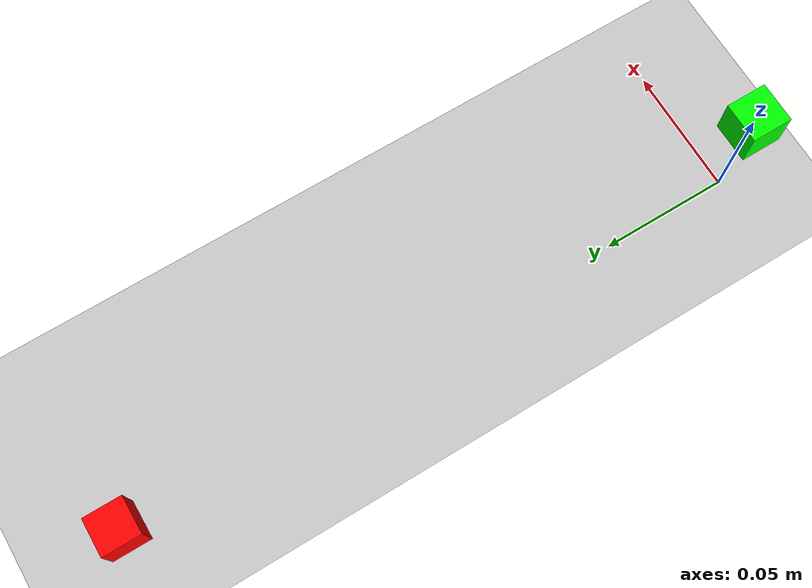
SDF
<?xml version="1.0" ?>
<sdf version="1.4">
  <!-- We use a custom world for the widowx_arm -->

  <world name="default">
    <include>
      <uri>model://ground_plane</uri>
    </include>

    <!-- Global light source -->
    <include>
      <uri>model://sun</uri>
    </include>

    <include>
      <uri>model://green_block</uri>
    </include>

    <include>
      <uri>model://red_block</uri>
    </include>

  </world>
</sdf>

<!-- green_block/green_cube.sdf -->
<sdf version="1.4">
<model name="green_cube">
  <pose>0 0 0.05 0 0 0</pose>
  <static>false</static>
    <link name="cube">
      <inertial>
        <mass>0.01</mass>
        <inertia> <!-- inertias are tricky to compute -->
          <!-- http://gazebosim.org/tutorials?tut=inertia&cat=build_robot -->
          <ixx>0.083*0.01</ixx>       <!-- for a box: ixx = 0.083 * mass * (y*y + z*z) -->
          <ixy>0.0</ixy>         <!-- for a box: ixy = 0 -->
          <ixz>0.0</ixz>         <!-- for a box: ixz = 0 -->
          <iyy>0.083*0.01</iyy>       <!-- for a box: iyy = 0.083 * mass * (x*x + z*z) -->
          <iyz>0.0</iyz>         <!-- for a box: iyz = 0 -->
          <izz>0.083*0.01</izz>       <!-- for a box: izz = 0.083 * mass * (x*x + y*y) -->
        </inertia>
      </inertial>
      <collision name="box">
        <geometry>
          <box>
            <size>.015 .015 .015</size>
          </box>
        </geometry>
        <surface>
  						<contact>
  							<ode>
  								<soft_cfm>0.2</soft_cfm>
  								<soft_erp>0.2</soft_erp>
  								<kp>1e5</kp>
  								<kd>1.0</kd>
  							</ode>
  						</contact>

  						<friction>
  							<ode>
  								<mu>1e10</mu>
  								<mu2>1e10</mu2>
  								<fdir1>0.000000 0.000000 1.000000</fdir1>
  							</ode>
  						</friction>
  						<contact>
  							<ode>
  								<max_vel>0.1</max_vel>
  								<min_depth>0.001</min_depth>
  							</ode>
  						</contact>
            </surface>
      </collision>
      <visual name="green_cube">
        <geometry>
          <box>
            <size>.015 .015 .015</size>
          </box>
        </geometry>
	 <material>
    		<ambient>0 1 0 1</ambient>
    		<diffuse>0 1 0 1</diffuse>
    		<specular>0.1 0.1 0.1 1</specular>
    		<emissive>0 0 0 0</emissive>
  	</material>
      </visual>
    </link>
  </model>
</sdf>

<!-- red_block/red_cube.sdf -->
<sdf version="1.4">
<model name="red_cube">
  <pose>0 0.25 0.0075 0 0 0</pose>
  <static>false</static>
    <link name="cube">
      <inertial>
        <mass>0.001</mass>
        <inertia> <!-- inertias are tricky to compute -->
          <!-- http://gazebosim.org/tutorials?tut=inertia&cat=build_robot -->
          <ixx>3.75e-8</ixx>       <!-- for a box: ixx = 0.083 * mass * (y*y + z*z) -->
          <ixy>0.0</ixy>         <!-- for a box: ixy = 0 -->
          <ixz>0.0</ixz>         <!-- for a box: ixz = 0 -->
          <iyy>3.75e-8</iyy>       <!-- for a box: iyy = 0.083 * mass * (x*x + z*z) -->
          <iyz>0.0</iyz>         <!-- for a box: iyz = 0 -->
          <izz>3.75e-8</izz>       <!-- for a box: izz = 0.083 * mass * (x*x + y*y) -->
        </inertia>
      </inertial>
      <collision name="box">
        <geometry>
          <box>
            <size>.015 .015 .015</size>
          </box>
        </geometry>
        <surface>
  						<contact>
  							<ode>
  								<soft_cfm>0.2</soft_cfm>
  								<soft_erp>0.2</soft_erp>
  								<kp>1e5</kp>
  								<kd>1.0</kd>
  							</ode>
  						</contact>

  						<friction>
  							<ode>
  								<mu>1</mu>
  								<mu2>1</mu2>
  								<fdir1>0.000000 0.000000 1.000000</fdir1>
  							</ode>
  						</friction>
  						<contact>
  							<ode>
  								<max_vel>0.1</max_vel>
  								<min_depth>0.001</min_depth>
  							</ode>
  						</contact>
            </surface>

      </collision>
      <visual name="red_cube">
        <geometry>
          <box>
            <size>.015 .015 .015</size>
          </box>
        </geometry>
	 <material>
    		<ambient>1 0 0 1</ambient>
    		<diffuse>1 0 0 1</diffuse>
    		<specular>0.1 0.1 0.1 1</specular>
    		<emissive>0 0 0 0</emissive>
  	</material>
      </visual>
    </link>
  </model>
</sdf>
